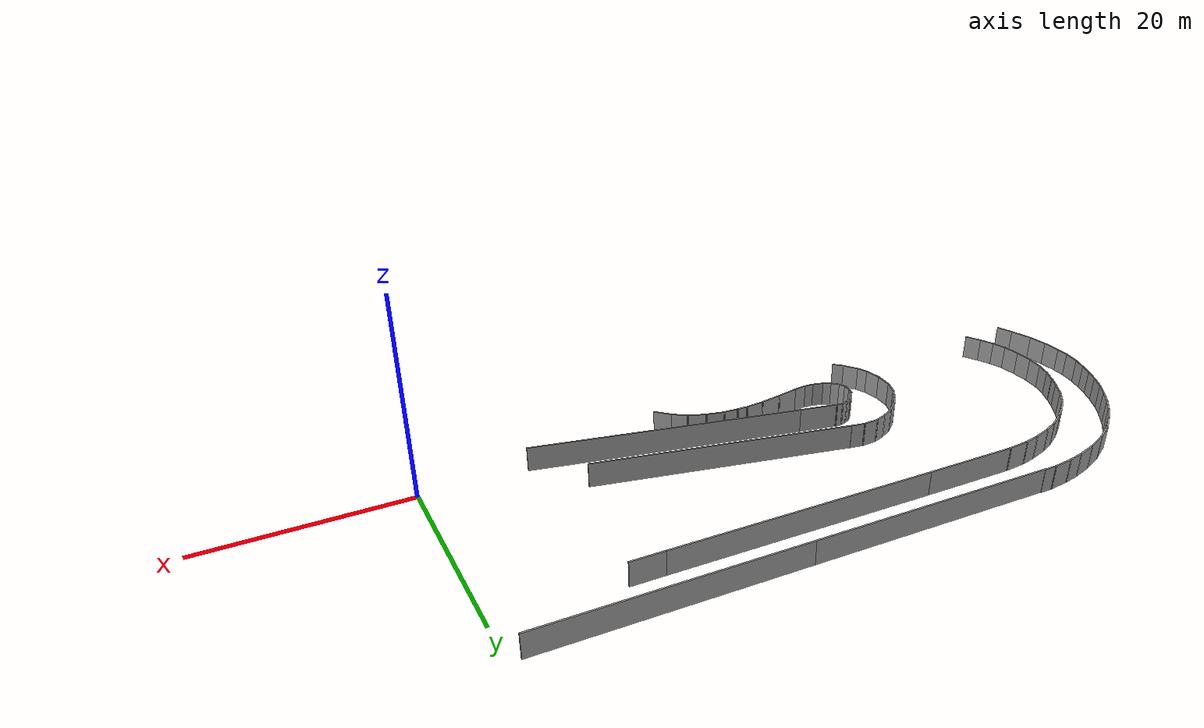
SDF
<sdf version="1.6">
 <model name="pista">
  <pose>-3.33646 -16.6519 0 0 -0 0</pose>
  <link name="Wall_0">
   <collision name="Wall_0_Collision">
    <geometry><box><size>24.8633 0.15 2.5</size></box></geometry>
    <pose>0 0 1.25 0 -0 0</pose>
   </collision>
   <visual name="Wall_0_Visual">
    <pose>0 0 1.25 0 -0 0</pose>
    <geometry><box><size>24.8633 0.15 2.5</size></box></geometry>
    <material>
     <script><uri>file://media/materials/scripts/gazebo.material</uri><name>Gazebo/Grey</name></script>
     <ambient>1 1 1 1</ambient>
    </material>
    <meta><layer>0</layer></meta>
   </visual>
   <pose>-35.8257 41.5756 0 0 0 -0.01184</pose>
  </link>
  <link name="Wall_189">
   <collision name="Wall_189_Collision">
    <geometry><box><size>27.5587 0.15 2.5</size></box></geometry>
    <pose>0 0 1.25 0 -0 0</pose>
   </collision>
   <visual name="Wall_189_Visual">
    <pose>0 0 1.25 0 -0 0</pose>
    <geometry><box><size>27.5587 0.15 2.5</size></box></geometry>
    <material>
     <script><uri>file://media/materials/scripts/gazebo.material</uri><name>Gazebo/Grey</name></script>
     <ambient>1 1 1 1</ambient>
    </material>
    <meta><layer>0</layer></meta>
   </visual>
   <pose>-20.7361 19.5502 0 0 -0 2.94229</pose>
  </link>
  <link name="Wall_191">
   <collision name="Wall_191_Collision">
    <geometry><box><size>4.1095 0.15 2.5</size></box></geometry>
    <pose>0 0 1.25 0 -0 0</pose>
   </collision>
   <visual name="Wall_191_Visual">
    <pose>0 0 1.25 0 -0 0</pose>
    <geometry><box><size>4.1095 0.15 2.5</size></box></geometry>
    <material>
     <script><uri>file://media/materials/scripts/gazebo.material</uri><name>Gazebo/Grey</name></script>
     <ambient>1 1 1 1</ambient>
    </material>
    <meta><layer>0</layer></meta>
   </visual>
   <pose>-36.1376 22.6491 0 0 -0 2.94551</pose>
  </link>
  <link name="Wall_192">
   <collision name="Wall_192_Collision">
    <geometry><box><size>0.790618 0.15 2.5</size></box></geometry>
    <pose>0 0 1.25 0 -0 0</pose>
   </collision>
   <visual name="Wall_192_Visual">
    <pose>0 0 1.25 0 -0 0</pose>
    <geometry><box><size>0.790618 0.15 2.5</size></box></geometry>
    <material>
     <script><uri>file://media/materials/scripts/gazebo.material</uri><name>Gazebo/Grey</name></script>
     <ambient>1 1 1 1</ambient>
    </material>
    <meta><layer>0</layer></meta>
   </visual>
   <pose>-38.3986 23.0614 0 0 -0 3.05845</pose>
  </link>
  <link name="Wall_193">
   <collision name="Wall_193_Collision">
    <geometry><box><size>0.78228 0.15 2.5</size></box></geometry>
    <pose>0 0 1.25 0 -0 0</pose>
   </collision>
   <visual name="Wall_193_Visual">
    <pose>0 0 1.25 0 -0 0</pose>
    <geometry><box><size>0.78228 0.15 2.5</size></box></geometry>
    <material>
     <script><uri>file://media/materials/scripts/gazebo.material</uri><name>Gazebo/Grey</name></script>
     <ambient>1 1 1 1</ambient>
    </material>
    <meta><layer>0</layer></meta>
   </visual>
   <pose>-39.0237 23.0082 0 0 0 -2.88641</pose>
  </link>
  <link name="Wall_194">
   <collision name="Wall_194_Collision">
    <geometry><box><size>0.698377 0.15 2.5</size></box></geometry>
    <pose>0 0 1.25 0 -0 0</pose>
   </collision>
   <visual name="Wall_194_Visual">
    <pose>0 0 1.25 0 -0 0</pose>
    <geometry><box><size>0.698377 0.15 2.5</size></box></geometry>
    <material>
     <script><uri>file://media/materials/scripts/gazebo.material</uri><name>Gazebo/Grey</name></script>
     <ambient>1 1 1 1</ambient>
    </material>
    <meta><layer>0</layer></meta>
   </visual>
   <pose>-39.5823 22.822 0 0 0 -2.74307</pose>
  </link>
  <link name="Wall_197">
   <collision name="Wall_197_Collision">
    <geometry><box><size>1.01522 0.15 2.5</size></box></geometry>
    <pose>0 0 1.25 0 -0 0</pose>
   </collision>
   <visual name="Wall_197_Visual">
    <pose>0 0 1.25 0 -0 0</pose>
    <geometry><box><size>1.01522 0.15 2.5</size></box></geometry>
    <material>
     <script><uri>file://media/materials/scripts/gazebo.material</uri><name>Gazebo/Grey</name></script>
     <ambient>1 1 1 1</ambient>
    </material>
    <meta><layer>0</layer></meta>
   </visual>
   <pose>-40.1675 22.4097 0 0 0 -2.35619</pose>
  </link>
  <link name="Wall_198">
   <collision name="Wall_198_Collision">
    <geometry><box><size>0.969442 0.15 2.5</size></box></geometry>
    <pose>0 0 1.25 0 -0 0</pose>
   </collision>
   <visual name="Wall_198_Visual">
    <pose>0 0 1.25 0 -0 0</pose>
    <geometry><box><size>0.969442 0.15 2.5</size></box></geometry>
    <material>
     <script><uri>file://media/materials/scripts/gazebo.material</uri><name>Gazebo/Grey</name></script>
     <ambient>1 1 1 1</ambient>
    </material>
    <meta><layer>0</layer></meta>
   </visual>
   <pose>-40.7128 21.7713 0 0 0 -2.19482</pose>
  </link>
  <link name="Wall_199">
   <collision name="Wall_199_Collision">
    <geometry><box><size>0.756578 0.15 2.5</size></box></geometry>
    <pose>0 0 1.25 0 -0 0</pose>
   </collision>
   <visual name="Wall_199_Visual">
    <pose>0 0 1.25 0 -0 0</pose>
    <geometry><box><size>0.756578 0.15 2.5</size></box></geometry>
    <material>
     <script><uri>file://media/materials/scripts/gazebo.material</uri><name>Gazebo/Grey</name></script>
     <ambient>1 1 1 1</ambient>
    </material>
    <meta><layer>0</layer></meta>
   </visual>
   <pose>-41.032 21.1462 0 0 0 -1.83705</pose>
  </link>
  <link name="Wall_200">
   <collision name="Wall_200_Collision">
    <geometry><box><size>0.868698 0.15 2.5</size></box></geometry>
    <pose>0 0 1.25 0 -0 0</pose>
   </collision>
   <visual name="Wall_200_Visual">
    <pose>0 0 1.25 0 -0 0</pose>
    <geometry><box><size>0.868698 0.15 2.5</size></box></geometry>
    <material>
     <script><uri>file://media/materials/scripts/gazebo.material</uri><name>Gazebo/Grey</name></script>
     <ambient>1 1 1 1</ambient>
    </material>
    <meta><layer>0</layer></meta>
   </visual>
   <pose>-41.0985 20.4945 0 0 0 -1.53378</pose>
  </link>
  <link name="Wall_201">
   <collision name="Wall_201_Collision">
    <geometry><box><size>0.841605 0.15 2.5</size></box></geometry>
    <pose>0 0 1.25 0 -0 0</pose>
   </collision>
   <visual name="Wall_201_Visual">
    <pose>0 0 1.25 0 -0 0</pose>
    <geometry><box><size>0.841605 0.15 2.5</size></box></geometry>
    <material>
     <script><uri>file://media/materials/scripts/gazebo.material</uri><name>Gazebo/Grey</name></script>
     <ambient>1 1 1 1</ambient>
    </material>
    <meta><layer>0</layer></meta>
   </visual>
   <pose>-40.9522 19.8162 0 0 0 -1.176</pose>
  </link>
  <link name="Wall_202">
   <collision name="Wall_202_Collision">
    <geometry><box><size>1.01604 0.15 2.5</size></box></geometry>
    <pose>0 0 1.25 0 -0 0</pose>
   </collision>
   <visual name="Wall_202_Visual">
    <pose>0 0 1.25 0 -0 0</pose>
    <geometry><box><size>1.01604 0.15 2.5</size></box></geometry>
    <material>
     <script><uri>file://media/materials/scripts/gazebo.material</uri><name>Gazebo/Grey</name></script>
     <ambient>1 1 1 1</ambient>
    </material>
    <meta><layer>0</layer></meta>
   </visual>
   <pose>-40.5 19.2044 0 0 0 -0.741947</pose>
  </link>
  <link name="Wall_203">
   <collision name="Wall_203_Collision">
    <geometry><box><size>0.994949 0.15 2.5</size></box></geometry>
    <pose>0 0 1.25 0 -0 0</pose>
   </collision>
   <visual name="Wall_203_Visual">
    <pose>0 0 1.25 0 -0 0</pose>
    <geometry><box><size>0.994949 0.15 2.5</size></box></geometry>
    <material>
     <script><uri>file://media/materials/scripts/gazebo.material</uri><name>Gazebo/Grey</name></script>
     <ambient>1 1 1 1</ambient>
    </material>
    <meta><layer>0</layer></meta>
   </visual>
   <pose>-39.8084 18.7123 0 0 0 -0.491809</pose>
  </link>
  <link name="Wall_204">
   <collision name="Wall_204_Collision">
    <geometry><box><size>1.27258 0.15 2.5</size></box></geometry>
    <pose>0 0 1.25 0 -0 0</pose>
   </collision>
   <visual name="Wall_204_Visual">
    <pose>0 0 1.25 0 -0 0</pose>
    <geometry><box><size>1.27258 0.15 2.5</size></box></geometry>
    <material>
     <script><uri>file://media/materials/scripts/gazebo.material</uri><name>Gazebo/Grey</name></script>
     <ambient>1 1 1 1</ambient>
    </material>
    <meta><layer>0</layer></meta>
   </visual>
   <pose>-38.8907 18.3798 0 0 0 -0.239232</pose>
  </link>
  <link name="Wall_205">
   <collision name="Wall_205_Collision">
    <geometry><box><size>1.10908 0.15 2.5</size></box></geometry>
    <pose>0 0 1.25 0 -0 0</pose>
   </collision>
   <visual name="Wall_205_Visual">
    <pose>0 0 1.25 0 -0 0</pose>
    <geometry><box><size>1.10908 0.15 2.5</size></box></geometry>
    <material>
     <script><uri>file://media/materials/scripts/gazebo.material</uri><name>Gazebo/Grey</name></script>
     <ambient>1 1 1 1</ambient>
    </material>
    <meta><layer>0</layer></meta>
   </visual>
   <pose>-37.8666 18.2202 0 0 0 -0.055499</pose>
  </link>
  <link name="Wall_206">
   <collision name="Wall_206_Collision">
    <geometry><box><size>1.46314 0.15 2.5</size></box></geometry>
    <pose>0 0 1.25 0 -0 0</pose>
   </collision>
   <visual name="Wall_206_Visual">
    <pose>0 0 1.25 0 -0 0</pose>
    <geometry><box><size>1.46314 0.15 2.5</size></box></geometry>
    <material>
     <script><uri>file://media/materials/scripts/gazebo.material</uri><name>Gazebo/Grey</name></script>
     <ambient>1 1 1 1</ambient>
    </material>
    <meta><layer>0</layer></meta>
   </visual>
   <pose>-36.7361 18.2734 0 0 -0 0.121842</pose>
  </link>
  <link name="Wall_207">
   <collision name="Wall_207_Collision">
    <geometry><box><size>2.39846 0.15 2.5</size></box></geometry>
    <pose>0 0 1.25 0 -0 0</pose>
   </collision>
   <visual name="Wall_207_Visual">
    <pose>0 0 1.25 0 -0 0</pose>
    <geometry><box><size>2.39846 0.15 2.5</size></box></geometry>
    <material>
     <script><uri>file://media/materials/scripts/gazebo.material</uri><name>Gazebo/Grey</name></script>
     <ambient>1 1 1 1</ambient>
    </material>
    <meta><layer>0</layer></meta>
   </visual>
   <pose>-34.9805 18.566 0 0 -0 0.190435</pose>
  </link>
  <link name="Wall_208">
   <collision name="Wall_208_Collision">
    <geometry><box><size>2.41524 0.15 2.5</size></box></geometry>
    <pose>0 0 1.25 0 -0 0</pose>
   </collision>
   <visual name="Wall_208_Visual">
    <pose>0 0 1.25 0 -0 0</pose>
    <geometry><box><size>2.41524 0.15 2.5</size></box></geometry>
    <material>
     <script><uri>file://media/materials/scripts/gazebo.material</uri><name>Gazebo/Grey</name></script>
     <ambient>1 1 1 1</ambient>
    </material>
    <meta><layer>0</layer></meta>
   </visual>
   <pose>-32.7594 18.965 0 0 -0 0.165149</pose>
  </link>
  <link name="Wall_209">
   <collision name="Wall_209_Collision">
    <geometry><box><size>2.04535 0.15 2.5</size></box></geometry>
    <pose>0 0 1.25 0 -0 0</pose>
   </collision>
   <visual name="Wall_209_Visual">
    <pose>0 0 1.25 0 -0 0</pose>
    <geometry><box><size>2.04535 0.15 2.5</size></box></geometry>
    <material>
     <script><uri>file://media/materials/scripts/gazebo.material</uri><name>Gazebo/Grey</name></script>
     <ambient>1 1 1 1</ambient>
    </material>
    <meta><layer>0</layer></meta>
   </visual>
   <pose>-30.6979 19.231 0 0 -0 0.084307</pose>
  </link>
  <link name="Wall_210">
   <collision name="Wall_210_Collision">
    <geometry><box><size>1.24093 0.15 2.5</size></box></geometry>
    <pose>0 0 1.25 0 -0 0</pose>
   </collision>
   <visual name="Wall_210_Visual">
    <pose>0 0 1.25 0 -0 0</pose>
    <geometry><box><size>1.24093 0.15 2.5</size></box></geometry>
    <material>
     <script><uri>file://media/materials/scripts/gazebo.material</uri><name>Gazebo/Grey</name></script>
     <ambient>1 1 1 1</ambient>
    </material>
    <meta><layer>0</layer></meta>
   </visual>
   <pose>-29.2082 19.2975 0 0 0 -0.024385</pose>
  </link>
  <link name="Wall_211">
   <collision name="Wall_211_Collision">
    <geometry><box><size>1.58863 0.15 2.5</size></box></geometry>
    <pose>0 0 1.25 0 -0 0</pose>
   </collision>
   <visual name="Wall_211_Visual">
    <pose>0 0 1.25 0 -0 0</pose>
    <geometry><box><size>1.58863 0.15 2.5</size></box></geometry>
    <material>
     <script><uri>file://media/materials/scripts/gazebo.material</uri><name>Gazebo/Grey</name></script>
     <ambient>1 1 1 1</ambient>
    </material>
    <meta><layer>0</layer></meta>
   </visual>
   <pose>-27.9447 19.2443 0 0 0 -0.055499</pose>
  </link>
  <link name="Wall_212">
   <collision name="Wall_212_Collision">
    <geometry><box><size>2.05428 0.15 2.5</size></box></geometry>
    <pose>0 0 1.25 0 -0 0</pose>
   </collision>
   <visual name="Wall_212_Visual">
    <pose>0 0 1.25 0 -0 0</pose>
    <geometry><box><size>2.05428 0.15 2.5</size></box></geometry>
    <material>
     <script><uri>file://media/materials/scripts/gazebo.material</uri><name>Gazebo/Grey</name></script>
     <ambient>1 1 1 1</ambient>
    </material>
    <meta><layer>0</layer></meta>
   </visual>
   <pose>-26.2955 19.0049 0 0 0 -0.211093</pose>
  </link>
  <link name="Wall_213">
   <collision name="Wall_213_Collision">
    <geometry><box><size>2.00249 0.15 2.5</size></box></geometry>
    <pose>0 0 1.25 0 -0 0</pose>
   </collision>
   <visual name="Wall_213_Visual">
    <pose>0 0 1.25 0 -0 0</pose>
    <geometry><box><size>2.00249 0.15 2.5</size></box></geometry>
    <material>
     <script><uri>file://media/materials/scripts/gazebo.material</uri><name>Gazebo/Grey</name></script>
     <ambient>1 1 1 1</ambient>
    </material>
    <meta><layer>0</layer></meta>
   </visual>
   <pose>-24.5 18.4729 0 0 0 -0.367174</pose>
  </link>
  <link name="Wall_214">
   <collision name="Wall_214_Collision">
    <geometry><box><size>1.72144 0.15 2.5</size></box></geometry>
    <pose>0 0 1.25 0 -0 0</pose>
   </collision>
   <visual name="Wall_214_Visual">
    <pose>0 0 1.25 0 -0 0</pose>
    <geometry><box><size>1.72144 0.15 2.5</size></box></geometry>
    <material>
     <script><uri>file://media/materials/scripts/gazebo.material</uri><name>Gazebo/Grey</name></script>
     <ambient>1 1 1 1</ambient>
    </material>
    <meta><layer>0</layer></meta>
   </visual>
   <pose>-22.9838 17.7015 0 0 0 -0.592697</pose>
  </link>
  <link name="Wall_215">
   <collision name="Wall_215_Collision">
    <geometry><box><size>1.95607 0.15 2.5</size></box></geometry>
    <pose>0 0 1.25 0 -0 0</pose>
   </collision>
   <visual name="Wall_215_Visual">
    <pose>0 0 1.25 0 -0 0</pose>
    <geometry><box><size>1.95607 0.15 2.5</size></box></geometry>
    <material>
     <script><uri>file://media/materials/scripts/gazebo.material</uri><name>Gazebo/Grey</name></script>
     <ambient>1 1 1 1</ambient>
    </material>
    <meta><layer>0</layer></meta>
   </visual>
   <pose>-21.6804 16.6375 0 0 0 -0.764568</pose>
  </link>
  <link name="Wall_250">
   <collision name="Wall_250_Collision">
    <geometry><box><size>1.85449 0.15 2.5</size></box></geometry>
    <pose>0 0 1.25 0 -0 0</pose>
   </collision>
   <visual name="Wall_250_Visual">
    <pose>0 0 1.25 0 -0 0</pose>
    <geometry><box><size>1.85449 0.15 2.5</size></box></geometry>
    <material>
     <script><uri>file://media/materials/scripts/gazebo.material</uri><name>Gazebo/Grey</name></script>
     <ambient>1 1 1 1</ambient>
    </material>
    <meta><layer>0</layer></meta>
   </visual>
   <pose>-65.6239 16.9833 0 0 -0 1.97159</pose>
  </link>
  <link name="Wall_251">
   <collision name="Wall_251_Collision">
    <geometry><box><size>2.46361 0.15 2.5</size></box></geometry>
    <pose>0 0 1.25 0 -0 0</pose>
   </collision>
   <visual name="Wall_251_Visual">
    <pose>0 0 1.25 0 -0 0</pose>
    <geometry><box><size>2.46361 0.15 2.5</size></box></geometry>
    <material>
     <script><uri>file://media/materials/scripts/gazebo.material</uri><name>Gazebo/Grey</name></script>
     <ambient>1 1 1 1</ambient>
    </material>
    <meta><layer>0</layer></meta>
   </visual>
   <pose>-66.3421 18.8586 0 0 -0 1.91073</pose>
  </link>
  <link name="Wall_252">
   <collision name="Wall_252_Collision">
    <geometry><box><size>2.10108 0.15 2.5</size></box></geometry>
    <pose>0 0 1.25 0 -0 0</pose>
   </collision>
   <visual name="Wall_252_Visual">
    <pose>0 0 1.25 0 -0 0</pose>
    <geometry><box><size>2.10108 0.15 2.5</size></box></geometry>
    <material>
     <script><uri>file://media/materials/scripts/gazebo.material</uri><name>Gazebo/Grey</name></script>
     <ambient>1 1 1 1</ambient>
    </material>
    <meta><layer>0</layer></meta>
   </visual>
   <pose>-66.914 20.9068 0 0 -0 1.76284</pose>
  </link>
  <link name="Wall_253">
   <collision name="Wall_253_Collision">
    <geometry><box><size>2.01884 0.15 2.5</size></box></geometry>
    <pose>0 0 1.25 0 -0 0</pose>
   </collision>
   <visual name="Wall_253_Visual">
    <pose>0 0 1.25 0 -0 0</pose>
    <geometry><box><size>2.01884 0.15 2.5</size></box></geometry>
    <material>
     <script><uri>file://media/materials/scripts/gazebo.material</uri><name>Gazebo/Grey</name></script>
     <ambient>1 1 1 1</ambient>
    </material>
    <meta><layer>0</layer></meta>
   </visual>
   <pose>-67.18 22.7954 0 0 -0 1.6563</pose>
  </link>
  <link name="Wall_255">
   <collision name="Wall_255_Collision">
    <geometry><box><size>1.42681 0.15 2.5</size></box></geometry>
    <pose>0 0 1.25 0 -0 0</pose>
   </collision>
   <visual name="Wall_255_Visual">
    <pose>0 0 1.25 0 -0 0</pose>
    <geometry><box><size>1.42681 0.15 2.5</size></box></geometry>
    <material>
     <script><uri>file://media/materials/scripts/gazebo.material</uri><name>Gazebo/Grey</name></script>
     <ambient>1 1 1 1</ambient>
    </material>
    <meta><layer>0</layer></meta>
   </visual>
   <pose>-67.2598 24.3914 0 0 -0 1.5708</pose>
  </link>
  <link name="Wall_256">
   <collision name="Wall_256_Collision">
    <geometry><box><size>1.8165 0.15 2.5</size></box></geometry>
    <pose>0 0 1.25 0 -0 0</pose>
   </collision>
   <visual name="Wall_256_Visual">
    <pose>0 0 1.25 0 -0 0</pose>
    <geometry><box><size>1.8165 0.15 2.5</size></box></geometry>
    <material>
     <script><uri>file://media/materials/scripts/gazebo.material</uri><name>Gazebo/Grey</name></script>
     <ambient>1 1 1 1</ambient>
    </material>
    <meta><layer>0</layer></meta>
   </visual>
   <pose>-67.1401 25.8544 0 0 -0 1.42664</pose>
  </link>
  <link name="Wall_257">
   <collision name="Wall_257_Collision">
    <geometry><box><size>1.59721 0.15 2.5</size></box></geometry>
    <pose>0 0 1.25 0 -0 0</pose>
   </collision>
   <visual name="Wall_257_Visual">
    <pose>0 0 1.25 0 -0 0</pose>
    <geometry><box><size>1.59721 0.15 2.5</size></box></geometry>
    <material>
     <script><uri>file://media/materials/scripts/gazebo.material</uri><name>Gazebo/Grey</name></script>
     <ambient>1 1 1 1</ambient>
    </material>
    <meta><layer>0</layer></meta>
   </visual>
   <pose>-66.8076 27.3706 0 0 -0 1.2723</pose>
  </link>
  <link name="Wall_258">
   <collision name="Wall_258_Collision">
    <geometry><box><size>1.49588 0.15 2.5</size></box></geometry>
    <pose>0 0 1.25 0 -0 0</pose>
   </collision>
   <visual name="Wall_258_Visual">
    <pose>0 0 1.25 0 -0 0</pose>
    <geometry><box><size>1.49588 0.15 2.5</size></box></geometry>
    <material>
     <script><uri>file://media/materials/scripts/gazebo.material</uri><name>Gazebo/Grey</name></script>
     <ambient>1 1 1 1</ambient>
    </material>
    <meta><layer>0</layer></meta>
   </visual>
   <pose>-66.382 28.7007 0 0 -0 1.24905</pose>
  </link>
  <link name="Wall_259">
   <collision name="Wall_259_Collision">
    <geometry><box><size>1.62745 0.15 2.5</size></box></geometry>
    <pose>0 0 1.25 0 -0 0</pose>
   </collision>
   <visual name="Wall_259_Visual">
    <pose>0 0 1.25 0 -0 0</pose>
    <geometry><box><size>1.62745 0.15 2.5</size></box></geometry>
    <material>
     <script><uri>file://media/materials/scripts/gazebo.material</uri><name>Gazebo/Grey</name></script>
     <ambient>1 1 1 1</ambient>
    </material>
    <meta><layer>0</layer></meta>
   </visual>
   <pose>-65.8766 30.0174 0 0 -0 1.16354</pose>
  </link>
  <link name="Wall_260">
   <collision name="Wall_260_Collision">
    <geometry><box><size>1.75596 0.15 2.5</size></box></geometry>
    <pose>0 0 1.25 0 -0 0</pose>
   </collision>
   <visual name="Wall_260_Visual">
    <pose>0 0 1.25 0 -0 0</pose>
    <geometry><box><size>1.75596 0.15 2.5</size></box></geometry>
    <material>
     <script><uri>file://media/materials/scripts/gazebo.material</uri><name>Gazebo/Grey</name></script>
     <ambient>1 1 1 1</ambient>
    </material>
    <meta><layer>0</layer></meta>
   </visual>
   <pose>-65.2249 31.4139 0 0 -0 1.10715</pose>
  </link>
  <link name="Wall_262">
   <collision name="Wall_262_Collision">
    <geometry><box><size>1.70674 0.15 2.5</size></box></geometry>
    <pose>0 0 1.25 0 -0 0</pose>
   </collision>
   <visual name="Wall_262_Visual">
    <pose>0 0 1.25 0 -0 0</pose>
    <geometry><box><size>1.70674 0.15 2.5</size></box></geometry>
    <material>
     <script><uri>file://media/materials/scripts/gazebo.material</uri><name>Gazebo/Grey</name></script>
     <ambient>1 1 1 1</ambient>
    </material>
    <meta><layer>0</layer></meta>
   </visual>
   <pose>-64.4136 32.837 0 0 -0 0.992272</pose>
  </link>
  <link name="Wall_263">
   <collision name="Wall_263_Collision">
    <geometry><box><size>1.92186 0.15 2.5</size></box></geometry>
    <pose>0 0 1.25 0 -0 0</pose>
   </collision>
   <visual name="Wall_263_Visual">
    <pose>0 0 1.25 0 -0 0</pose>
    <geometry><box><size>1.92186 0.15 2.5</size></box></geometry>
    <material>
     <script><uri>file://media/materials/scripts/gazebo.material</uri><name>Gazebo/Grey</name></script>
     <ambient>1 1 1 1</ambient>
    </material>
    <meta><layer>0</layer></meta>
   </visual>
   <pose>-63.4693 34.2069 0 0 -0 0.945311</pose>
  </link>
  <link name="Wall_264">
   <collision name="Wall_264_Collision">
    <geometry><box><size>1.90178 0.15 2.5</size></box></geometry>
    <pose>0 0 1.25 0 -0 0</pose>
   </collision>
   <visual name="Wall_264_Visual">
    <pose>0 0 1.25 0 -0 0</pose>
    <geometry><box><size>1.90178 0.15 2.5</size></box></geometry>
    <material>
     <script><uri>file://media/materials/scripts/gazebo.material</uri><name>Gazebo/Grey</name></script>
     <ambient>1 1 1 1</ambient>
    </material>
    <meta><layer>0</layer></meta>
   </visual>
   <pose>-62.3654 35.5768 0 0 -0 0.83911</pose>
  </link>
  <link name="Wall_265">
   <collision name="Wall_265_Collision">
    <geometry><box><size>1.88085 0.15 2.5</size></box></geometry>
    <pose>0 0 1.25 0 -0 0</pose>
   </collision>
   <visual name="Wall_265_Visual">
    <pose>0 0 1.25 0 -0 0</pose>
    <geometry><box><size>1.88085 0.15 2.5</size></box></geometry>
    <material>
     <script><uri>file://media/materials/scripts/gazebo.material</uri><name>Gazebo/Grey</name></script>
     <ambient>1 1 1 1</ambient>
    </material>
    <meta><layer>0</layer></meta>
   </visual>
   <pose>-61.1551 36.827 0 0 -0 0.763662</pose>
  </link>
  <link name="Wall_266">
   <collision name="Wall_266_Collision">
    <geometry><box><size>2.01979 0.15 2.5</size></box></geometry>
    <pose>0 0 1.25 0 -0 0</pose>
   </collision>
   <visual name="Wall_266_Visual">
    <pose>0 0 1.25 0 -0 0</pose>
    <geometry><box><size>2.01979 0.15 2.5</size></box></geometry>
    <material>
     <script><uri>file://media/materials/scripts/gazebo.material</uri><name>Gazebo/Grey</name></script>
     <ambient>1 1 1 1</ambient>
    </material>
    <meta><layer>0</layer></meta>
   </visual>
   <pose>-59.8118 38.024 0 0 -0 0.694738</pose>
  </link>
  <link name="Wall_267">
   <collision name="Wall_267_Collision">
    <geometry><box><size>2.44965 0.15 2.5</size></box></geometry>
    <pose>0 0 1.25 0 -0 0</pose>
   </collision>
   <visual name="Wall_267_Visual">
    <pose>0 0 1.25 0 -0 0</pose>
    <geometry><box><size>2.44965 0.15 2.5</size></box></geometry>
    <material>
     <script><uri>file://media/materials/scripts/gazebo.material</uri><name>Gazebo/Grey</name></script>
     <ambient>1 1 1 1</ambient>
    </material>
    <meta><layer>0</layer></meta>
   </visual>
   <pose>-58.0961 39.1944 0 0 -0 0.520581</pose>
  </link>
  <link name="Wall_268">
   <collision name="Wall_268_Collision">
    <geometry><box><size>2.51128 0.15 2.5</size></box></geometry>
    <pose>0 0 1.25 0 -0 0</pose>
   </collision>
   <visual name="Wall_268_Visual">
    <pose>0 0 1.25 0 -0 0</pose>
    <geometry><box><size>2.51128 0.15 2.5</size></box></geometry>
    <material>
     <script><uri>file://media/materials/scripts/gazebo.material</uri><name>Gazebo/Grey</name></script>
     <ambient>1 1 1 1</ambient>
    </material>
    <meta><layer>0</layer></meta>
   </visual>
   <pose>-56.0079 40.2185 0 0 -0 0.393058</pose>
  </link>
  <link name="Wall_269">
   <collision name="Wall_269_Collision">
    <geometry><box><size>2.19614 0.15 2.5</size></box></geometry>
    <pose>0 0 1.25 0 -0 0</pose>
   </collision>
   <visual name="Wall_269_Visual">
    <pose>0 0 1.25 0 -0 0</pose>
    <geometry><box><size>2.19614 0.15 2.5</size></box></geometry>
    <material>
     <script><uri>file://media/materials/scripts/gazebo.material</uri><name>Gazebo/Grey</name></script>
     <ambient>1 1 1 1</ambient>
    </material>
    <meta><layer>0</layer></meta>
   </visual>
   <pose>-53.9331 40.95 0 0 -0 0.276514</pose>
  </link>
  <link name="Wall_270">
   <collision name="Wall_270_Collision">
    <geometry><box><size>1.80371 0.15 2.5</size></box></geometry>
    <pose>0 0 1.25 0 -0 0</pose>
   </collision>
   <visual name="Wall_270_Visual">
    <pose>0 0 1.25 0 -0 0</pose>
    <geometry><box><size>1.80371 0.15 2.5</size></box></geometry>
    <material>
     <script><uri>file://media/materials/scripts/gazebo.material</uri><name>Gazebo/Grey</name></script>
     <ambient>1 1 1 1</ambient>
    </material>
    <meta><layer>0</layer></meta>
   </visual>
   <pose>-52.1376 41.389 0 0 -0 0.194241</pose>
  </link>
  <link name="Wall_271">
   <collision name="Wall_271_Collision">
    <geometry><box><size>2.18278 0.15 2.5</size></box></geometry>
    <pose>0 0 1.25 0 -0 0</pose>
   </collision>
   <visual name="Wall_271_Visual">
    <pose>0 0 1.25 0 -0 0</pose>
    <geometry><box><size>2.18278 0.15 2.5</size></box></geometry>
    <material>
     <script><uri>file://media/materials/scripts/gazebo.material</uri><name>Gazebo/Grey</name></script>
     <ambient>1 1 1 1</ambient>
    </material>
    <meta><layer>0</layer></meta>
   </visual>
   <pose>-50.3155 41.655 0 0 -0 0.104877</pose>
  </link>
  <link name="Wall_272">
   <collision name="Wall_272_Collision">
    <geometry><box><size>1.34701 0.15 2.5</size></box></geometry>
    <pose>0 0 1.25 0 -0 0</pose>
   </collision>
   <visual name="Wall_272_Visual">
    <pose>0 0 1.25 0 -0 0</pose>
    <geometry><box><size>1.34701 0.15 2.5</size></box></geometry>
    <material>
     <script><uri>file://media/materials/scripts/gazebo.material</uri><name>Gazebo/Grey</name></script>
     <ambient>1 1 1 1</ambient>
    </material>
    <meta><layer>0</layer></meta>
   </visual>
   <pose>-48.7062 41.7614 0 0 -0 0</pose>
  </link>
  <link name="Wall_274">
   <collision name="Wall_274_Collision">
    <geometry><box><size>26.3902 0.15 2.5</size></box></geometry>
    <pose>0 0 1.25 0 -0 0</pose>
   </collision>
   <visual name="Wall_274_Visual">
    <pose>0 0 1.25 0 -0 0</pose>
    <geometry><box><size>26.3902 0.15 2.5</size></box></geometry>
    <material>
     <script><uri>file://media/materials/scripts/gazebo.material</uri><name>Gazebo/Grey</name></script>
     <ambient>1 1 1 1</ambient>
    </material>
    <meta><layer>0</layer></meta>
   </visual>
   <pose>-24.239 24.6295 0 0 -0 2.94261</pose>
  </link>
  <link name="Wall_3">
   <collision name="Wall_3_Collision">
    <geometry><box><size>25.7145 0.15 2.5</size></box></geometry>
    <pose>0 0 1.25 0 -0 0</pose>
   </collision>
   <visual name="Wall_3_Visual">
    <pose>0 0 1.25 0 -0 0</pose>
    <geometry><box><size>25.7145 0.15 2.5</size></box></geometry>
    <material>
     <script><uri>file://media/materials/scripts/gazebo.material</uri><name>Gazebo/Grey</name></script>
     <ambient>1 1 1 1</ambient>
    </material>
    <meta><layer>0</layer></meta>
   </visual>
   <pose>-10.6885 41.283 0 0 0 -0.011446</pose>
  </link>
  <link name="Wall_400">
   <collision name="Wall_400_Collision">
    <geometry><box><size>3.36873 0.15 2.5</size></box></geometry>
    <pose>0 0 1.25 0 -0 0</pose>
   </collision>
   <visual name="Wall_400_Visual">
    <pose>0 0 1.25 0 -0 0</pose>
    <geometry><box><size>3.36873 0.15 2.5</size></box></geometry>
    <material>
     <script><uri>file://media/materials/scripts/gazebo.material</uri><name>Gazebo/Grey</name></script>
     <ambient>1 1 1 1</ambient>
    </material>
    <meta><layer>0</layer></meta>
   </visual>
   <pose>-10.1637 37.0607 0 0 -0 3.13333</pose>
  </link>
  <link name="Wall_402">
   <collision name="Wall_402_Collision">
    <geometry><box><size>26.7528 0.15 2.5</size></box></geometry>
    <pose>0 0 1.25 0 -0 0</pose>
   </collision>
   <visual name="Wall_402_Visual">
    <pose>0 0 1.25 0 -0 0</pose>
    <geometry><box><size>26.7528 0.15 2.5</size></box></geometry>
    <material>
     <script><uri>file://media/materials/scripts/gazebo.material</uri><name>Gazebo/Grey</name></script>
     <ambient>1 1 1 1</ambient>
    </material>
    <meta><layer>0</layer></meta>
   </visual>
   <pose>-25.1264 37.2336 0 0 -0 3.12959</pose>
  </link>
  <link name="Wall_404">
   <collision name="Wall_404_Collision">
    <geometry><box><size>9.40702 0.15 2.5</size></box></geometry>
    <pose>0 0 1.25 0 -0 0</pose>
   </collision>
   <visual name="Wall_404_Visual">
    <pose>0 0 1.25 0 -0 0</pose>
    <geometry><box><size>9.40702 0.15 2.5</size></box></geometry>
    <material>
     <script><uri>file://media/materials/scripts/gazebo.material</uri><name>Gazebo/Grey</name></script>
     <ambient>1 1 1 1</ambient>
    </material>
    <meta><layer>0</layer></meta>
   </visual>
   <pose>-43.2145 37.4198 0 0 -0 3.13585</pose>
  </link>
  <link name="Wall_405">
   <collision name="Wall_405_Collision">
    <geometry><box><size>2.36565 0.15 2.5</size></box></geometry>
    <pose>0 0 1.25 0 -0 0</pose>
   </collision>
   <visual name="Wall_405_Visual">
    <pose>0 0 1.25 0 -0 0</pose>
    <geometry><box><size>2.36565 0.15 2.5</size></box></geometry>
    <material>
     <script><uri>file://media/materials/scripts/gazebo.material</uri><name>Gazebo/Grey</name></script>
     <ambient>1 1 1 1</ambient>
    </material>
    <meta><layer>0</layer></meta>
   </visual>
   <pose>-48.9468 37.3533 0 0 0 -3.05745</pose>
  </link>
  <link name="Wall_406">
   <collision name="Wall_406_Collision">
    <geometry><box><size>1.69419 0.15 2.5</size></box></geometry>
    <pose>0 0 1.25 0 -0 0</pose>
   </collision>
   <visual name="Wall_406_Visual">
    <pose>0 0 1.25 0 -0 0</pose>
    <geometry><box><size>1.69419 0.15 2.5</size></box></geometry>
    <material>
     <script><uri>file://media/materials/scripts/gazebo.material</uri><name>Gazebo/Grey</name></script>
     <ambient>1 1 1 1</ambient>
    </material>
    <meta><layer>0</layer></meta>
   </visual>
   <pose>-50.8089 37.1139 0 0 0 -2.95095</pose>
  </link>
  <link name="Wall_407">
   <collision name="Wall_407_Collision">
    <geometry><box><size>2.15263 0.15 2.5</size></box></geometry>
    <pose>0 0 1.25 0 -0 0</pose>
   </collision>
   <visual name="Wall_407_Visual">
    <pose>0 0 1.25 0 -0 0</pose>
    <geometry><box><size>2.15263 0.15 2.5</size></box></geometry>
    <material>
     <script><uri>file://media/materials/scripts/gazebo.material</uri><name>Gazebo/Grey</name></script>
     <ambient>1 1 1 1</ambient>
    </material>
    <meta><layer>0</layer></meta>
   </visual>
   <pose>-52.5246 36.675 0 0 0 -2.84505</pose>
  </link>
  <link name="Wall_408">
   <collision name="Wall_408_Collision">
    <geometry><box><size>1.61712 0.15 2.5</size></box></geometry>
    <pose>0 0 1.25 0 -0 0</pose>
   </collision>
   <visual name="Wall_408_Visual">
    <pose>0 0 1.25 0 -0 0</pose>
    <geometry><box><size>1.61712 0.15 2.5</size></box></geometry>
    <material>
     <script><uri>file://media/materials/scripts/gazebo.material</uri><name>Gazebo/Grey</name></script>
     <ambient>1 1 1 1</ambient>
    </material>
    <meta><layer>0</layer></meta>
   </visual>
   <pose>-54.1605 36.1031 0 0 0 -2.75099</pose>
  </link>
  <link name="Wall_409">
   <collision name="Wall_409_Collision">
    <geometry><box><size>2.03411 0.15 2.5</size></box></geometry>
    <pose>0 0 1.25 0 -0 0</pose>
   </collision>
   <visual name="Wall_409_Visual">
    <pose>0 0 1.25 0 -0 0</pose>
    <geometry><box><size>2.03411 0.15 2.5</size></box></geometry>
    <material>
     <script><uri>file://media/materials/scripts/gazebo.material</uri><name>Gazebo/Grey</name></script>
     <ambient>1 1 1 1</ambient>
    </material>
    <meta><layer>0</layer></meta>
   </visual>
   <pose>-55.6501 35.345 0 0 0 -2.60844</pose>
  </link>
  <link name="Wall_410">
   <collision name="Wall_410_Collision">
    <geometry><box><size>1.63438 0.15 2.5</size></box></geometry>
    <pose>0 0 1.25 0 -0 0</pose>
   </collision>
   <visual name="Wall_410_Visual">
    <pose>0 0 1.25 0 -0 0</pose>
    <geometry><box><size>1.63438 0.15 2.5</size></box></geometry>
    <material>
     <script><uri>file://media/materials/scripts/gazebo.material</uri><name>Gazebo/Grey</name></script>
     <ambient>1 1 1 1</ambient>
    </material>
    <meta><layer>0</layer></meta>
   </visual>
   <pose>-57.0599 34.4273 0 0 0 -2.50884</pose>
  </link>
  <link name="Wall_411">
   <collision name="Wall_411_Collision">
    <geometry><box><size>1.78737 0.15 2.5</size></box></geometry>
    <pose>0 0 1.25 0 -0 0</pose>
   </collision>
   <visual name="Wall_411_Visual">
    <pose>0 0 1.25 0 -0 0</pose>
    <geometry><box><size>1.78737 0.15 2.5</size></box></geometry>
    <material>
     <script><uri>file://media/materials/scripts/gazebo.material</uri><name>Gazebo/Grey</name></script>
     <ambient>1 1 1 1</ambient>
    </material>
    <meta><layer>0</layer></meta>
   </visual>
   <pose>-58.2569 33.4298 0 0 0 -2.39066</pose>
  </link>
  <link name="Wall_412">
   <collision name="Wall_412_Collision">
    <geometry><box><size>1.92804 0.15 2.5</size></box></geometry>
    <pose>0 0 1.25 0 -0 0</pose>
   </collision>
   <visual name="Wall_412_Visual">
    <pose>0 0 1.25 0 -0 0</pose>
    <geometry><box><size>1.92804 0.15 2.5</size></box></geometry>
    <material>
     <script><uri>file://media/materials/scripts/gazebo.material</uri><name>Gazebo/Grey</name></script>
     <ambient>1 1 1 1</ambient>
    </material>
    <meta><layer>0</layer></meta>
   </visual>
   <pose>-59.414 32.1796 0 0 0 -2.25021</pose>
  </link>
  <link name="Wall_413">
   <collision name="Wall_413_Collision">
    <geometry><box><size>1.99771 0.15 2.5</size></box></geometry>
    <pose>0 0 1.25 0 -0 0</pose>
   </collision>
   <visual name="Wall_413_Visual">
    <pose>0 0 1.25 0 -0 0</pose>
    <geometry><box><size>1.99771 0.15 2.5</size></box></geometry>
    <material>
     <script><uri>file://media/materials/scripts/gazebo.material</uri><name>Gazebo/Grey</name></script>
     <ambient>1 1 1 1</ambient>
    </material>
    <meta><layer>0</layer></meta>
   </visual>
   <pose>-60.4381 30.69 0 0 0 -2.09887</pose>
  </link>
  <link name="Wall_414">
   <collision name="Wall_414_Collision">
    <geometry><box><size>1.47067 0.15 2.5</size></box></geometry>
    <pose>0 0 1.25 0 -0 0</pose>
   </collision>
   <visual name="Wall_414_Visual">
    <pose>0 0 1.25 0 -0 0</pose>
    <geometry><box><size>1.47067 0.15 2.5</size></box></geometry>
    <material>
     <script><uri>file://media/materials/scripts/gazebo.material</uri><name>Gazebo/Grey</name></script>
     <ambient>1 1 1 1</ambient>
    </material>
    <meta><layer>0</layer></meta>
   </visual>
   <pose>-61.2095 29.3068 0 0 0 -2.05246</pose>
  </link>
  <link name="Wall_416">
   <collision name="Wall_416_Collision">
    <geometry><box><size>1.55453 0.15 2.5</size></box></geometry>
    <pose>0 0 1.25 0 -0 0</pose>
   </collision>
   <visual name="Wall_416_Visual">
    <pose>0 0 1.25 0 -0 0</pose>
    <geometry><box><size>1.55453 0.15 2.5</size></box></geometry>
    <material>
     <script><uri>file://media/materials/scripts/gazebo.material</uri><name>Gazebo/Grey</name></script>
     <ambient>1 1 1 1</ambient>
    </material>
    <meta><layer>0</layer></meta>
   </visual>
   <pose>-61.7814 28.0299 0 0 0 -2.00056</pose>
  </link>
  <link name="Wall_417">
   <collision name="Wall_417_Collision">
    <geometry><box><size>1.69922 0.15 2.5</size></box></geometry>
    <pose>0 0 1.25 0 -0 0</pose>
   </collision>
   <visual name="Wall_417_Visual">
    <pose>0 0 1.25 0 -0 0</pose>
    <geometry><box><size>1.69922 0.15 2.5</size></box></geometry>
    <material>
     <script><uri>file://media/materials/scripts/gazebo.material</uri><name>Gazebo/Grey</name></script>
     <ambient>1 1 1 1</ambient>
    </material>
    <meta><layer>0</layer></meta>
   </visual>
   <pose>-62.2868 26.6467 0 0 0 -1.8491</pose>
  </link>
  <link name="Wall_418">
   <collision name="Wall_418_Collision">
    <geometry><box><size>1.86257 0.15 2.5</size></box></geometry>
    <pose>0 0 1.25 0 -0 0</pose>
   </collision>
   <visual name="Wall_418_Visual">
    <pose>0 0 1.25 0 -0 0</pose>
    <geometry><box><size>1.86257 0.15 2.5</size></box></geometry>
    <material>
     <script><uri>file://media/materials/scripts/gazebo.material</uri><name>Gazebo/Grey</name></script>
     <ambient>1 1 1 1</ambient>
    </material>
    <meta><layer>0</layer></meta>
   </visual>
   <pose>-62.5927 25.0507 0 0 0 -1.67974</pose>
  </link>
  <link name="Wall_419">
   <collision name="Wall_419_Collision">
    <geometry><box><size>1.98715 0.15 2.5</size></box></geometry>
    <pose>0 0 1.25 0 -0 0</pose>
   </collision>
   <visual name="Wall_419_Visual">
    <pose>0 0 1.25 0 -0 0</pose>
    <geometry><box><size>1.98715 0.15 2.5</size></box></geometry>
    <material>
     <script><uri>file://media/materials/scripts/gazebo.material</uri><name>Gazebo/Grey</name></script>
     <ambient>1 1 1 1</ambient>
    </material>
    <meta><layer>0</layer></meta>
   </visual>
   <pose>-62.6459 23.2818 0 0 0 -1.52734</pose>
  </link>
  <link name="Wall_420">
   <collision name="Wall_420_Collision">
    <geometry><box><size>1.92186 0.15 2.5</size></box></geometry>
    <pose>0 0 1.25 0 -0 0</pose>
   </collision>
   <visual name="Wall_420_Visual">
    <pose>0 0 1.25 0 -0 0</pose>
    <geometry><box><size>1.92186 0.15 2.5</size></box></geometry>
    <material>
     <script><uri>file://media/materials/scripts/gazebo.material</uri><name>Gazebo/Grey</name></script>
     <ambient>1 1 1 1</ambient>
    </material>
    <meta><layer>0</layer></meta>
   </visual>
   <pose>-62.4863 21.4863 0 0 0 -1.43527</pose>
  </link>
  <link name="Wall_421">
   <collision name="Wall_421_Collision">
    <geometry><box><size>1.51363 0.15 2.5</size></box></geometry>
    <pose>0 0 1.25 0 -0 0</pose>
   </collision>
   <visual name="Wall_421_Visual">
    <pose>0 0 1.25 0 -0 0</pose>
    <geometry><box><size>1.51363 0.15 2.5</size></box></geometry>
    <material>
     <script><uri>file://media/materials/scripts/gazebo.material</uri><name>Gazebo/Grey</name></script>
     <ambient>1 1 1 1</ambient>
    </material>
    <meta><layer>0</layer></meta>
   </visual>
   <pose>-62.1272 19.9701 0 0 0 -1.21203</pose>
  </link>
  <link name="Wall_423">
   <collision name="Wall_423_Collision">
    <geometry><box><size>1.77979 0.15 2.5</size></box></geometry>
    <pose>0 0 1.25 0 -0 0</pose>
   </collision>
   <visual name="Wall_423_Visual">
    <pose>0 0 1.25 0 -0 0</pose>
    <geometry><box><size>1.77979 0.15 2.5</size></box></geometry>
    <material>
     <script><uri>file://media/materials/scripts/gazebo.material</uri><name>Gazebo/Grey</name></script>
     <ambient>1 1 1 1</ambient>
    </material>
    <meta><layer>0</layer></meta>
   </visual>
   <pose>-61.5819 18.6002 0 0 0 -1.11445</pose>
  </link>
  <link name="Wall_424">
   <collision name="Wall_424_Collision">
    <geometry><box><size>1.77414 0.15 2.5</size></box></geometry>
    <pose>0 0 1.25 0 -0 0</pose>
   </collision>
   <visual name="Wall_424_Visual">
    <pose>0 0 1.25 0 -0 0</pose>
    <geometry><box><size>1.77414 0.15 2.5</size></box></geometry>
    <material>
     <script><uri>file://media/materials/scripts/gazebo.material</uri><name>Gazebo/Grey</name></script>
     <ambient>1 1 1 1</ambient>
    </material>
    <meta><layer>0</layer></meta>
   </visual>
   <pose>-60.7972 17.1771 0 0 0 -1.01914</pose>
  </link>
  <link name="Wall_464">
   <collision name="Wall_464_Collision">
    <geometry><box><size>1.35614 0.15 2.5</size></box></geometry>
    <pose>0 0 1.25 0 -0 0</pose>
   </collision>
   <visual name="Wall_464_Visual">
    <pose>0 0 1.25 0 -0 0</pose>
    <geometry><box><size>1.35614 0.15 2.5</size></box></geometry>
    <material>
     <script><uri>file://media/materials/scripts/gazebo.material</uri><name>Gazebo/Grey</name></script>
     <ambient>1 1 1 1</ambient>
    </material>
    <meta><layer>0</layer></meta>
   </visual>
   <pose>-43.3209 15.7673 0 0 -0 2.41861</pose>
  </link>
  <link name="Wall_466">
   <collision name="Wall_466_Collision">
    <geometry><box><size>1.66644 0.15 2.5</size></box></geometry>
    <pose>0 0 1.25 0 -0 0</pose>
   </collision>
   <visual name="Wall_466_Visual">
    <pose>0 0 1.25 0 -0 0</pose>
    <geometry><box><size>1.66644 0.15 2.5</size></box></geometry>
    <material>
     <script><uri>file://media/materials/scripts/gazebo.material</uri><name>Gazebo/Grey</name></script>
     <ambient>1 1 1 1</ambient>
    </material>
    <meta><layer>0</layer></meta>
   </visual>
   <pose>-44.212 16.7914 0 0 -0 2.23184</pose>
  </link>
  <link name="Wall_467">
   <collision name="Wall_467_Collision">
    <geometry><box><size>1.24449 0.15 2.5</size></box></geometry>
    <pose>0 0 1.25 0 -0 0</pose>
   </collision>
   <visual name="Wall_467_Visual">
    <pose>0 0 1.25 0 -0 0</pose>
    <geometry><box><size>1.24449 0.15 2.5</size></box></geometry>
    <material>
     <script><uri>file://media/materials/scripts/gazebo.material</uri><name>Gazebo/Grey</name></script>
     <ambient>1 1 1 1</ambient>
    </material>
    <meta><layer>0</layer></meta>
   </visual>
   <pose>-44.9169 17.882 0 0 -0 2.02358</pose>
  </link>
  <link name="Wall_468">
   <collision name="Wall_468_Collision">
    <geometry><box><size>1.83508 0.15 2.5</size></box></geometry>
    <pose>0 0 1.25 0 -0 0</pose>
   </collision>
   <visual name="Wall_468_Visual">
    <pose>0 0 1.25 0 -0 0</pose>
    <geometry><box><size>1.83508 0.15 2.5</size></box></geometry>
    <material>
     <script><uri>file://media/materials/scripts/gazebo.material</uri><name>Gazebo/Grey</name></script>
     <ambient>1 1 1 1</ambient>
    </material>
    <meta><layer>0</layer></meta>
   </visual>
   <pose>-45.3292 19.1987 0 0 -0 1.77748</pose>
  </link>
  <link name="Wall_469">
   <collision name="Wall_469_Collision">
    <geometry><box><size>1.93301 0.15 2.5</size></box></geometry>
    <pose>0 0 1.25 0 -0 0</pose>
   </collision>
   <visual name="Wall_469_Visual">
    <pose>0 0 1.25 0 -0 0</pose>
    <geometry><box><size>1.93301 0.15 2.5</size></box></geometry>
    <material>
     <script><uri>file://media/materials/scripts/gazebo.material</uri><name>Gazebo/Grey</name></script>
     <ambient>1 1 1 1</ambient>
    </material>
    <meta><layer>0</layer></meta>
   </visual>
   <pose>-45.4755 20.9144 0 0 -0 1.54095</pose>
  </link>
  <link name="Wall_470">
   <collision name="Wall_470_Collision">
    <geometry><box><size>1.68937 0.15 2.5</size></box></geometry>
    <pose>0 0 1.25 0 -0 0</pose>
   </collision>
   <visual name="Wall_470_Visual">
    <pose>0 0 1.25 0 -0 0</pose>
    <geometry><box><size>1.68937 0.15 2.5</size></box></geometry>
    <material>
     <script><uri>file://media/materials/scripts/gazebo.material</uri><name>Gazebo/Grey</name></script>
     <ambient>1 1 1 1</ambient>
    </material>
    <meta><layer>0</layer></meta>
   </visual>
   <pose>-45.2095 22.537 0 0 -0 1.25451</pose>
  </link>
  <link name="Wall_471">
   <collision name="Wall_471_Collision">
    <geometry><box><size>1.47815 0.15 2.5</size></box></geometry>
    <pose>0 0 1.25 0 -0 0</pose>
   </collision>
   <visual name="Wall_471_Visual">
    <pose>0 0 1.25 0 -0 0</pose>
    <geometry><box><size>1.47815 0.15 2.5</size></box></geometry>
    <material>
     <script><uri>file://media/materials/scripts/gazebo.material</uri><name>Gazebo/Grey</name></script>
     <ambient>1 1 1 1</ambient>
    </material>
    <meta><layer>0</layer></meta>
   </visual>
   <pose>-44.611 23.8271 0 0 -0 0.999459</pose>
  </link>
  <link name="Wall_473">
   <collision name="Wall_473_Collision">
    <geometry><box><size>1.34227 0.15 2.5</size></box></geometry>
    <pose>0 0 1.25 0 -0 0</pose>
   </collision>
   <visual name="Wall_473_Visual">
    <pose>0 0 1.25 0 -0 0</pose>
    <geometry><box><size>1.34227 0.15 2.5</size></box></geometry>
    <material>
     <script><uri>file://media/materials/scripts/gazebo.material</uri><name>Gazebo/Grey</name></script>
     <ambient>1 1 1 1</ambient>
    </material>
    <meta><layer>0</layer></meta>
   </visual>
   <pose>-43.8263 24.9044 0 0 -0 0.896055</pose>
  </link>
  <link name="Wall_474">
   <collision name="Wall_474_Collision">
    <geometry><box><size>1.75419 0.15 2.5</size></box></geometry>
    <pose>0 0 1.25 0 -0 0</pose>
   </collision>
   <visual name="Wall_474_Visual">
    <pose>0 0 1.25 0 -0 0</pose>
    <geometry><box><size>1.75419 0.15 2.5</size></box></geometry>
    <material>
     <script><uri>file://media/materials/scripts/gazebo.material</uri><name>Gazebo/Grey</name></script>
     <ambient>1 1 1 1</ambient>
    </material>
    <meta><layer>0</layer></meta>
   </visual>
   <pose>-42.8421 25.8886 0 0 -0 0.703231</pose>
  </link>
  <link name="Wall_475">
   <collision name="Wall_475_Collision">
    <geometry><box><size>1.4824 0.15 2.5</size></box></geometry>
    <pose>0 0 1.25 0 -0 0</pose>
   </collision>
   <visual name="Wall_475_Visual">
    <pose>0 0 1.25 0 -0 0</pose>
    <geometry><box><size>1.4824 0.15 2.5</size></box></geometry>
    <material>
     <script><uri>file://media/materials/scripts/gazebo.material</uri><name>Gazebo/Grey</name></script>
     <ambient>1 1 1 1</ambient>
    </material>
    <meta><layer>0</layer></meta>
   </visual>
   <pose>-41.6318 26.6999 0 0 -0 0.454719</pose>
  </link>
  <link name="Wall_476">
   <collision name="Wall_476_Collision">
    <geometry><box><size>1.38655 0.15 2.5</size></box></geometry>
    <pose>0 0 1.25 0 -0 0</pose>
   </collision>
   <visual name="Wall_476_Visual">
    <pose>0 0 1.25 0 -0 0</pose>
    <geometry><box><size>1.38655 0.15 2.5</size></box></geometry>
    <material>
     <script><uri>file://media/materials/scripts/gazebo.material</uri><name>Gazebo/Grey</name></script>
     <ambient>1 1 1 1</ambient>
    </material>
    <meta><layer>0</layer></meta>
   </visual>
   <pose>-40.4481 27.192 0 0 -0 0.328553</pose>
  </link>
  <link name="Wall_477">
   <collision name="Wall_477_Collision">
    <geometry><box><size>1.69373 0.15 2.5</size></box></geometry>
    <pose>0 0 1.25 0 -0 0</pose>
   </collision>
   <visual name="Wall_477_Visual">
    <pose>0 0 1.25 0 -0 0</pose>
    <geometry><box><size>1.69373 0.15 2.5</size></box></geometry>
    <material>
     <script><uri>file://media/materials/scripts/gazebo.material</uri><name>Gazebo/Grey</name></script>
     <ambient>1 1 1 1</ambient>
    </material>
    <meta><layer>0</layer></meta>
   </visual>
   <pose>-39.0915 27.4181 0 0 -0 0.034469</pose>
  </link>
  <link name="Wall_478">
   <collision name="Wall_478_Collision">
    <geometry><box><size>1.47067 0.15 2.5</size></box></geometry>
    <pose>0 0 1.25 0 -0 0</pose>
   </collision>
   <visual name="Wall_478_Visual">
    <pose>0 0 1.25 0 -0 0</pose>
    <geometry><box><size>1.47067 0.15 2.5</size></box></geometry>
    <material>
     <script><uri>file://media/materials/scripts/gazebo.material</uri><name>Gazebo/Grey</name></script>
     <ambient>1 1 1 1</ambient>
    </material>
    <meta><layer>0</layer></meta>
   </visual>
   <pose>-37.6684 27.3383 0 0 0 -0.161837</pose>
  </link>
  <static>1</static>
 </model>
</sdf>
